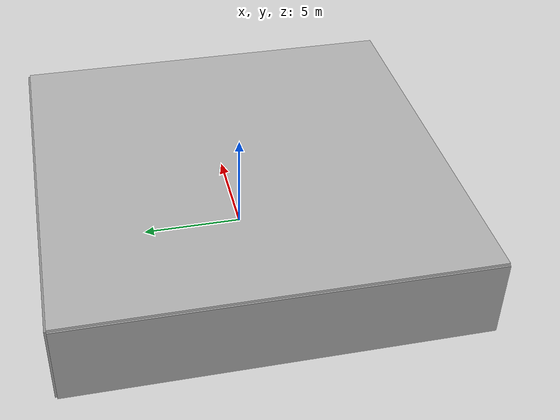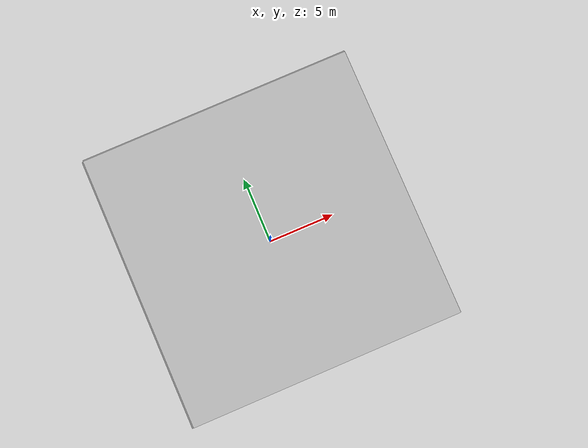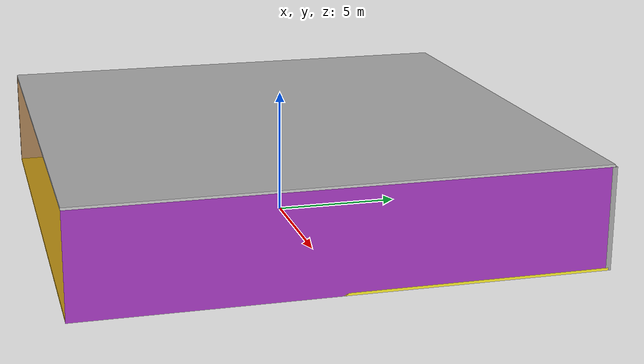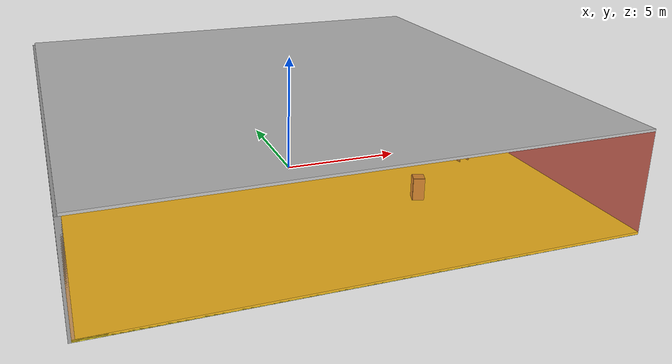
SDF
<sdf version="1.4">
 <world name="default">
  <physics type="ode">
   <max_step_size>0.001</max_step_size>
   <real_time_factor>1</real_time_factor>
   <real_time_update_rate>1000</real_time_update_rate>
   <gravity>0 0 -9.8</gravity>
  </physics>
  <scene><ambient>0.4 0.4 0.4 1</ambient><background>0.7 0.7 0.7 1</background><shadows>1</shadows></scene>
  <model name="Surrounding">
   <static>1</static>
   <link name="Ceiling">
    <collision name="Ceiling_Collision"><geometry><box><size>20 20 0.1</size></box></geometry></collision>
    <visual name="Ceiling_Visual">
     <geometry><box><size>20 20 0.1</size></box></geometry>
     <material>
      <script><uri>file://media/materials/scripts/gazebo.material</uri><name>Gazebo/JointAnchor</name></script>
     </material>
    </visual>
    <pose>0 0 4.05 0 0 0</pose>
   </link>
   <link name="Wall_South">
    <collision name="Wall_South_Collision">
     <geometry><box><size>20 0 4</size></box></geometry>
     <pose>0 0 2 0 -0 0</pose>
    </collision>
    <visual name="Wall_South_Visual">
     <pose>0 0 2 0 -0 0</pose>
     <geometry><box><size>20 0 4</size></box></geometry>
     <material>
      <script>
       <uri>file://media/materials/scripts/gazebo.material</uri>
       <name>Gazebo/OrangeTransparent</name>
      </script>
     </material>
    </visual>
    <velocity_decay><linear>0</linear><angular>0</angular></velocity_decay>
    <pose>0 -10 0 0 -0 0</pose>
   </link>
   <link name="Wall_East">
    <collision name="Wall_21_Collision">
     <geometry><box><size>20 0 4</size></box></geometry>
     <pose>0 0 2 0 -0 0</pose>
    </collision>
    <visual name="Wall_21_Visual">
     <pose>0 0 2 0 -0 0</pose>
     <geometry><box><size>20 0 4</size></box></geometry>
     <material>
      <script><uri>file://media/materials/scripts/gazebo.material</uri><name>Gazebo/Purple</name></script>
     </material>
    </visual>
    <velocity_decay><linear>0</linear><angular>0</angular></velocity_decay>
    <pose>10 0 0 0 -0 1.5708</pose>
   </link>
   <link name="Wall_North">
    <collision name="Wall_22_Collision">
     <geometry><box><size>20 0.2 4</size></box></geometry>
     <pose>0 0 2 0 -0 0</pose>
    </collision>
    <visual name="Wall_22_Visual">
     <pose>0 0 2 0 -0 0</pose>
     <geometry><box><size>20 0.2 4</size></box></geometry>
     <material>
      <script><uri>file://media/materials/scripts/gazebo.material</uri><name>Gazebo/GreyGradientSky</name></script>
     </material>
    </visual>
    <velocity_decay><linear>0</linear><angular>0</angular></velocity_decay>
    <pose>0 10 0 0 -0 0</pose>
   </link>
   <link name="Wall_West">
    <collision name="Wall_23_Collision">
     <geometry><box><size>20 0.2 4</size></box></geometry>
     <pose>0 0 2 0 -0 0</pose>
    </collision>
    <visual name="Wall_23_Visual">
     <pose>0 0 2 0 -0 0</pose>
     <geometry><box><size>20 0.2 4</size></box></geometry>
     <material>
      <script><uri>file://media/materials/scripts/gazebo.material</uri><name>Gazebo/Grey</name></script>
     </material>
    </visual>
    <velocity_decay><linear>0</linear><angular>0</angular></velocity_decay>
    <pose>-10 0 0 0 0 -1.5708</pose>
   </link>
   <link name="Ground_link">
    <collision name="collision">
     <pose>0 0 .05 0 -0 0</pose>
     <geometry><box><size>20 20 0.1</size></box></geometry>
    </collision>
    <visual name="visual">
     <pose>0 0 .05 0 -0 0</pose>
     <geometry><box><size>20 20 0.1</size></box></geometry>
     <material>
      <script><uri>file://media/materials/scripts/gazebo.material</uri><name>Gazebo/YellowGlow</name></script>
     </material>
    </visual>
   </link>
   <static>1</static>
  </model>
  <spherical_coordinates>
   <surface_model>EARTH_WGS84</surface_model>
   <latitude_deg>0</latitude_deg>
   <longitude_deg>0</longitude_deg>
   <elevation>0</elevation>
   <heading_deg>0</heading_deg>
  </spherical_coordinates>
  <light name="lightball_0" type="diffuse">
   <diffuse>0.8 0.8 0.8 1</diffuse>
   <specular>0.2 0.2 0.2 1</specular>
   <attenuation>
    <range>100</range>
    <constant>0.7</constant>
    <linear>0.01</linear>
    <quadratic>0.001</quadratic>
   </attenuation>
   <direction>-0.5 0.1 -0.9</direction>
   <pose>1.17207945643 -8.92796471712 1.57658854261 0 0 0</pose>
  </light>
  <light name="lightball_1" type="diffuse">
   <diffuse>0.8 0.8 0.8 1</diffuse>
   <specular>0.2 0.2 0.2 1</specular>
   <attenuation>
    <range>100</range>
    <constant>0.7</constant>
    <linear>0.01</linear>
    <quadratic>0.001</quadratic>
   </attenuation>
   <direction>-0.5 0.1 -0.9</direction>
   <pose>3.6888976266 -7.07557447886 2.33504461165 0 0 0</pose>
  </light>
  <light name="lightball_2" type="diffuse">
   <diffuse>0.8 0.8 0.8 1</diffuse>
   <specular>0.2 0.2 0.2 1</specular>
   <attenuation>
    <range>100</range>
    <constant>0.7</constant>
    <linear>0.01</linear>
    <quadratic>0.001</quadratic>
   </attenuation>
   <direction>-0.5 0.1 -0.9</direction>
   <pose>-8.76667413586 3.43420941632 0.984375678136 0 0 0</pose>
  </light>
  <light name="lightball_3" type="diffuse">
   <diffuse>0.8 0.8 0.8 1</diffuse>
   <specular>0.2 0.2 0.2 1</specular>
   <attenuation>
    <range>100</range>
    <constant>0.7</constant>
    <linear>0.01</linear>
    <quadratic>0.001</quadratic>
   </attenuation>
   <direction>-0.5 0.1 -0.9</direction>
   <pose>4.85195398863 -5.44165830427 1.19365896922 0 0 0</pose>
  </light>
  <light name="lightball_4" type="diffuse">
   <diffuse>0.8 0.8 0.8 1</diffuse>
   <specular>0.2 0.2 0.2 1</specular>
   <attenuation>
    <range>100</range>
    <constant>0.7</constant>
    <linear>0.01</linear>
    <quadratic>0.001</quadratic>
   </attenuation>
   <direction>-0.5 0.1 -0.9</direction>
   <pose>2.21292190437 -2.20990963907 3.75321529074 0 0 0</pose>
  </light>
  <light name="lightball_5" type="diffuse">
   <diffuse>0.8 0.8 0.8 1</diffuse>
   <specular>0.2 0.2 0.2 1</specular>
   <attenuation>
    <range>100</range>
    <constant>0.7</constant>
    <linear>0.01</linear>
    <quadratic>0.001</quadratic>
   </attenuation>
   <direction>-0.5 0.1 -0.9</direction>
   <pose>4.36245161278 0.629652795112 0.692601598818 0 0 0</pose>
  </light>
  <light name="lightball_6" type="diffuse">
   <diffuse>0.8 0.8 0.8 1</diffuse>
   <specular>0.2 0.2 0.2 1</specular>
   <attenuation>
    <range>100</range>
    <constant>0.7</constant>
    <linear>0.01</linear>
    <quadratic>0.001</quadratic>
   </attenuation>
   <direction>-0.5 0.1 -0.9</direction>
   <pose>-1.06087598826 -1.6283422969 0.976791812821 0 0 0</pose>
  </light>
  <light name="lightball_7" type="diffuse">
   <diffuse>0.8 0.8 0.8 1</diffuse>
   <specular>0.2 0.2 0.2 1</specular>
   <attenuation>
    <range>100</range>
    <constant>0.7</constant>
    <linear>0.01</linear>
    <quadratic>0.001</quadratic>
   </attenuation>
   <direction>-0.5 0.1 -0.9</direction>
   <pose>3.29637756179 4.87479744717 1.47265934267 0 0 0</pose>
  </light>
  <light name="lightball_8" type="diffuse">
   <diffuse>0.8 0.8 0.8 1</diffuse>
   <specular>0.2 0.2 0.2 1</specular>
   <attenuation>
    <range>100</range>
    <constant>0.7</constant>
    <linear>0.01</linear>
    <quadratic>0.001</quadratic>
   </attenuation>
   <direction>-0.5 0.1 -0.9</direction>
   <pose>-2.9329091234 -6.57715282947 3.8016845033 0 0 0</pose>
  </light>
  <light name="lightball_9" type="diffuse">
   <diffuse>0.8 0.8 0.8 1</diffuse>
   <specular>0.2 0.2 0.2 1</specular>
   <attenuation>
    <range>100</range>
    <constant>0.7</constant>
    <linear>0.01</linear>
    <quadratic>0.001</quadratic>
   </attenuation>
   <direction>-0.5 0.1 -0.9</direction>
   <pose>-2.54412449073 -3.3184063105 2.22491505977 0 0 0</pose>
  </light>
  <light name="lightball_10" type="diffuse">
   <diffuse>0.8 0.8 0.8 1</diffuse>
   <specular>0.2 0.2 0.2 1</specular>
   <attenuation>
    <range>100</range>
    <constant>0.7</constant>
    <linear>0.01</linear>
    <quadratic>0.001</quadratic>
   </attenuation>
   <direction>-0.5 0.1 -0.9</direction>
   <pose>7.41491301058 0.114954887973 3.02113250059 0 0 0</pose>
  </light>
  <light name="lightball_11" type="diffuse">
   <diffuse>0.8 0.8 0.8 1</diffuse>
   <specular>0.2 0.2 0.2 1</specular>
   <attenuation>
    <range>100</range>
    <constant>0.7</constant>
    <linear>0.01</linear>
    <quadratic>0.001</quadratic>
   </attenuation>
   <direction>-0.5 0.1 -0.9</direction>
   <pose>-2.85946086663 2.2081936968 1.8748933975 0 0 0</pose>
  </light>
  <light name="lightball_12" type="diffuse">
   <diffuse>0.8 0.8 0.8 1</diffuse>
   <specular>0.2 0.2 0.2 1</specular>
   <attenuation>
    <range>100</range>
    <constant>0.7</constant>
    <linear>0.01</linear>
    <quadratic>0.001</quadratic>
   </attenuation>
   <direction>-0.5 0.1 -0.9</direction>
   <pose>6.53934334108 -3.28674447465 1.58372800842 0 0 0</pose>
  </light>
  <include><uri>model://table</uri><pose>-7.86984402336 1.6285777354 0 0 0 2.47350980379</pose></include>
  <include><uri>model://table</uri><pose>-2.18843712122 4.68254589755 0 0 0 3.06004924512</pose></include>
  <include><uri>model://cabinet</uri><pose>1.48622881579 7.90825812316 0 0 0 0.267201742387</pose></include>
  <include><uri>model://cabinet</uri><pose>3.76978546921 -4.78043130899 0 0 0 2.8064954348</pose></include>
  <include><uri>model://cabinet</uri><pose>7.52452673925 -1.84461137693 0 0 0 1.71311179546</pose></include>
 </world>
</sdf>

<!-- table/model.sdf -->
<sdf version="1.5">
  <model name="table">
    <static>true</static>
    <link name="link">
      <collision name="surface">
        <pose>0 0 1.0 0 0 0</pose>
        <geometry>
          <box>
            <size>1.5 0.8 0.03</size>
          </box>
        </geometry>
        <surface>
          <friction>
            <ode>
              <mu>0.6</mu>
              <mu2>0.6</mu2>
            </ode>
          </friction>
        </surface>
      </collision>
      <visual name="visual1">
        <pose>0 0 1.0 0 0 0</pose>
        <geometry>
          <box>
            <size>1.5 0.8 0.03</size>
          </box>
        </geometry>
        <material>
          <script>
            <uri>model://media/materials/scripts/gazebo.material</uri>
            <name>Gazebo/Wood</name>
          </script>
        </material>
      </visual>
      <collision name="front_left_leg">
        <pose>0.68 0.38 0.5 0 0 0</pose>
        <geometry>
          <cylinder>
            <radius>0.02</radius>
            <length>1.0</length>
          </cylinder>
        </geometry>
      </collision>
      <visual name="front_left_leg">
        <pose>0.68 0.38 0.5 0 0 0</pose>
        <geometry>
          <cylinder>
            <radius>0.02</radius>
            <length>1.0</length>
          </cylinder>
        </geometry>
        <material>
          <script>
            <uri>model://media/materials/scripts/gazebo.material</uri>
            <name>Gazebo/Grey</name>
          </script>
        </material>
      </visual>
      <collision name="front_right_leg">
        <pose>0.68 -0.38 0.5 0 0 0</pose>
        <geometry>
          <cylinder>
            <radius>0.02</radius>
            <length>1.0</length>
          </cylinder>
        </geometry>
      </collision>
      <visual name="front_right_leg">
        <pose>0.68 -0.38 0.5 0 0 0</pose>
        <geometry>
          <cylinder>
            <radius>0.02</radius>
            <length>1.0</length>
          </cylinder>
        </geometry>
        <material>
          <script>
            <uri>model://media/materials/scripts/gazebo.material</uri>
            <name>Gazebo/Grey</name>
          </script>
        </material>
      </visual>
      <collision name="back_right_leg">
        <pose>-0.68 -0.38 0.5 0 0 0</pose>
        <geometry>
          <cylinder>
            <radius>0.02</radius>
            <length>1.0</length>
          </cylinder>
        </geometry>
      </collision>
      <visual name="back_right_leg">
        <pose>-0.68 -0.38 0.5 0 0 0</pose>
        <geometry>
          <cylinder>
            <radius>0.02</radius>
            <length>1.0</length>
          </cylinder>
        </geometry>
        <material>
          <script>
            <uri>model://media/materials/scripts/gazebo.material</uri>
            <name>Gazebo/Grey</name>
          </script>
        </material>
      </visual>
      <collision name="back_left_leg">
        <pose>-0.68 0.38 0.5 0 0 0</pose>
        <geometry>
          <cylinder>
            <radius>0.02</radius>
            <length>1.0</length>
          </cylinder>
        </geometry>
      </collision>
      <visual name="back_left_leg">
        <pose>-0.68 0.38 0.5 0 0 0</pose>
        <geometry>
          <cylinder>
            <radius>0.02</radius>
            <length>1.0</length>
          </cylinder>
        </geometry>
        <material>
          <script>
            <uri>model://media/materials/scripts/gazebo.material</uri>
            <name>Gazebo/Grey</name>
          </script>
        </material>
      </visual>
    </link>
  </model>
</sdf>

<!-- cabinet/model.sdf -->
<sdf version="1.5">
  <model name="cabinet">
    <static>true</static>
    <link name="cabinet_bottom_plate">
      <inertial>
        <pose>0 0 -1 0 0 0</pose>
        <inertia>
          <ixx>2.050000</ixx>
          <ixy>0</ixy>
          <ixz>0</ixz>
          <iyy>2.050000</iyy>
          <iyz>0</iyz>
          <izz>2.050000</izz>
        </inertia>
        <mass>25.000000</mass>
      </inertial>
      <collision name="cabinet_bottom_plate_geom">
        <pose>0 0 0.010000 0 0 0</pose>
        <geometry>
          <box>
            <size>0.450000 0.450000 0.020000</size>
          </box>
        </geometry>
      </collision>
      <visual name="cabinet_bottom_plate_geom_visual">
        <pose>0 0 0.010000 0 0 0</pose>
        <geometry>
          <box>
            <size>0.450000 0.450000 0.020000</size>
          </box>
        </geometry>
        <material>
          <script>
            <uri>model://media/materials/scripts/gazebo.material</uri>
            <name>Gazebo/Wood</name>
          </script>
        </material>
      </visual>
      <collision name="cabinet_bottom_plate_geom_cabinet_back_plate">
        <pose>0.235000 0 0.510000 0 0 0</pose>
        <geometry>
          <box>
            <size>0.020000 0.450000 1.020000</size>
          </box>
        </geometry>
      </collision>
      <visual name="cabinet_bottom_plate_geom_cabinet_back_plate_visual">
        <pose>0.235000 0 0.510000 0 0 0</pose>
        <geometry>
          <box>
            <size>0.020000 0.450000 1.020000</size>
          </box>
        </geometry>
        <material>
          <script>
            <uri>model://media/materials/scripts/gazebo.material</uri>
            <name>Gazebo/Wood</name>
          </script>
        </material>
      </visual>
      <collision name="cabinet_bottom_plate_geom_cabinet_left_plate">
        <pose>0 0.235000 0.510000 0 0 0</pose>
        <geometry>
          <box>
            <size>0.450000 0.020000 1.020000</size>
          </box>
        </geometry>
      </collision>
      <visual name="cabinet_bottom_plate_geom_cabinet_left_plate_visual">
        <pose>0 0.235000 0.510000 0 0 0</pose>
        <geometry>
          <box>
            <size>0.450000 0.020000 1.020000</size>
          </box>
        </geometry>
        <material>
          <script>
            <uri>model://media/materials/scripts/gazebo.material</uri>
            <name>Gazebo/Wood</name>
          </script>
        </material>
      </visual>
      <collision name="cabinet_bottom_plate_geom_cabinet_middle_plate">
        <pose>0 0 0.510000 0 0 0</pose>
        <geometry>
          <box>
            <size>0.450000 0.450000 0.020000</size>
          </box>
        </geometry>
      </collision>
      <visual name="cabinet_bottom_plate_geom_cabinet_middle_plate_visual">
        <pose>0 0 0.510000 0 0 0</pose>
        <geometry>
          <box>
            <size>0.450000 0.450000 0.020000</size>
          </box>
        </geometry>
        <material>
          <script>
            <uri>model://media/materials/scripts/gazebo.material</uri>
            <name>Gazebo/Wood</name>
          </script>
        </material>
      </visual>
      <collision name="cabinet_bottom_plate_geom_cabinet_right_plate">
        <pose>0 -0.235000 0.510000 0 0 0</pose>
        <geometry>
          <box>
            <size>0.450000 0.020000 1.020000</size>
          </box>
        </geometry>
      </collision>
      <visual name="cabinet_bottom_plate_geom_cabinet_right_plate_visual">
        <pose>0 -0.235000 0.510000 0 0 0</pose>
        <geometry>
          <box>
            <size>0.450000 0.020000 1.020000</size>
          </box>
        </geometry>
        <material>
          <script>
            <uri>model://media/materials/scripts/gazebo.material</uri>
            <name>Gazebo/Wood</name>
          </script>
        </material>
      </visual>
      <collision name="cabinet_bottom_plate_geom_cabinet_top_plate">
        <pose>0 0 1.010000 0 0 0</pose>
        <geometry>
          <box>
            <size>0.450000 0.450000 0.020000</size>
          </box>
        </geometry>
      </collision>
      <visual name="cabinet_bottom_plate_geom_cabinet_top_plate_visual">
        <pose>0 0 1.010000 0 0 0</pose>
        <geometry>
          <box>
            <size>0.450000 0.450000 0.020000</size>
          </box>
        </geometry>
        <material>
          <script>
            <uri>model://media/materials/scripts/gazebo.material</uri>
            <name>Gazebo/Wood</name>
          </script>
        </material>
      </visual>
    </link>
  </model>
</sdf>
